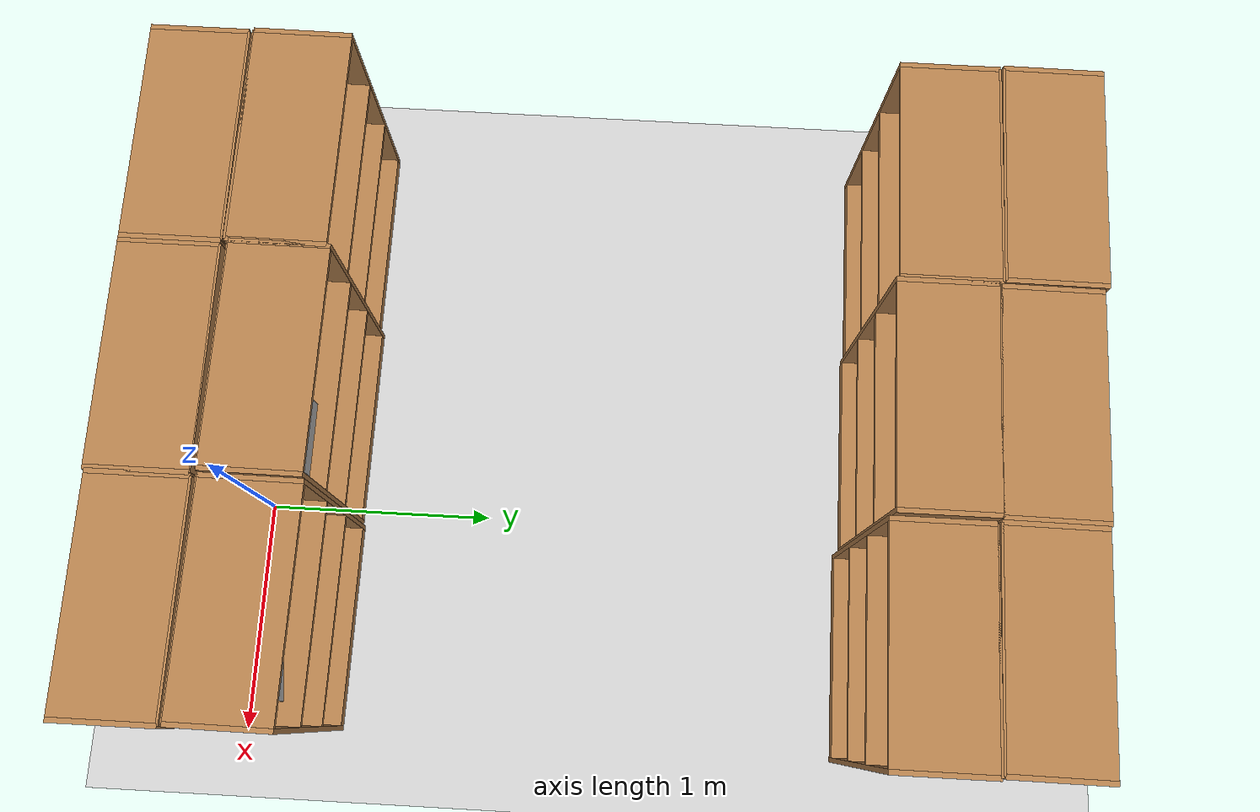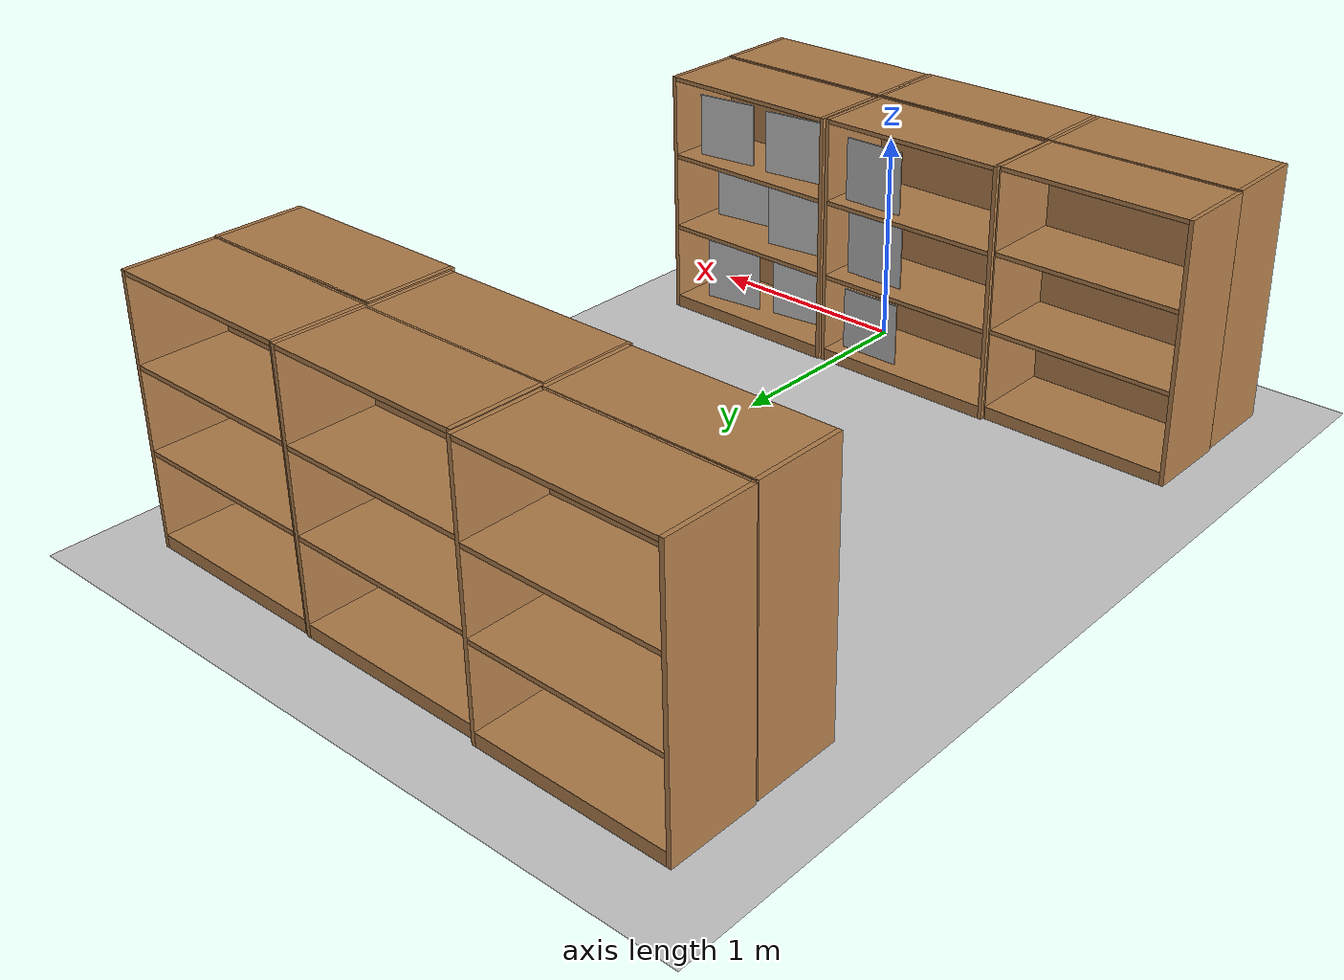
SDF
<sdf version="1.6">
 <world name="default">
  <model name="ground_plane">
   <static>1</static>
   <link name="link">
    <collision name="collision">
     <geometry><plane><normal>0 0 1</normal><size>100 100</size></plane></geometry>
     <surface><friction><ode><mu>100</mu><mu2>50</mu2></ode></friction></surface>
    </collision>
    <visual name="visual">
     <cast_shadows>0</cast_shadows>
     <geometry><plane><normal>0 0 1</normal><size>100 100</size></plane></geometry>
     <material>
      <script><uri>file://media/materials/scripts/gazebo.material</uri><name>Gazebo/Grey</name></script>
     </material>
    </visual>
   </link>
  </model>
  <model name="Shelves">
   <model name="bookshelf">
    <static>1</static>
    <link name="link">
     <inertial><mass>1</mass></inertial>
     <collision name="back">
      <pose>0 0.005 0.6 0 -0 0</pose>
      <geometry><box><size>0.9 0.01 1.2</size></box></geometry>
     </collision>
     <visual name="visual1">
      <pose>0 0.005 0.6 0 -0 0</pose>
      <geometry><box><size>0.9 0.01 1.2</size></box></geometry>
      <material>
       <script><uri>file://media/materials/scripts/gazebo.material</uri><name>Gazebo/Wood</name></script>
      </material>
     </visual>
     <collision name="left_side">
      <pose>0.45 -0.195 0.6 0 -0 0</pose>
      <geometry><box><size>0.02 0.4 1.2</size></box></geometry>
     </collision>
     <visual name="visual2">
      <pose>0.45 -0.195 0.6 0 -0 0</pose>
      <geometry><box><size>0.02 0.4 1.2</size></box></geometry>
      <material>
       <script><uri>file://media/materials/scripts/gazebo.material</uri><name>Gazebo/Wood</name></script>
      </material>
     </visual>
     <collision name="right_side">
      <pose>-0.45 -0.195 0.6 0 -0 0</pose>
      <geometry><box><size>0.02 0.4 1.2</size></box></geometry>
     </collision>
     <visual name="visual3">
      <pose>-0.45 -0.195 0.6 0 -0 0</pose>
      <geometry><box><size>0.02 0.4 1.2</size></box></geometry>
      <material>
       <script><uri>file://media/materials/scripts/gazebo.material</uri><name>Gazebo/Wood</name></script>
      </material>
     </visual>
     <collision name="bottom">
      <pose>0 -0.195 0.03 0 -0 0</pose>
      <geometry><box><size>0.88 0.4 0.06</size></box></geometry>
     </collision>
     <visual name="visual4">
      <pose>0 -0.195 0.03 0 -0 0</pose>
      <geometry><box><size>0.88 0.4 0.06</size></box></geometry>
      <material>
       <script><uri>file://media/materials/scripts/gazebo.material</uri><name>Gazebo/Wood</name></script>
      </material>
     </visual>
     <collision name="top">
      <pose>0 -0.195 1.19 0 -0 0</pose>
      <geometry><box><size>0.88 0.4 0.02</size></box></geometry>
     </collision>
     <visual name="visual5">
      <pose>0 -0.195 1.19 0 -0 0</pose>
      <geometry><box><size>0.88 0.4 0.02</size></box></geometry>
      <material>
       <script><uri>file://media/materials/scripts/gazebo.material</uri><name>Gazebo/Wood</name></script>
      </material>
     </visual>
     <collision name="low_shelf">
      <pose>0 -0.195 0.43 0 -0 0</pose>
      <geometry><box><size>0.88 0.4 0.02</size></box></geometry>
     </collision>
     <visual name="visual6">
      <pose>0 -0.195 0.43 0 -0 0</pose>
      <geometry><box><size>0.88 0.4 0.02</size></box></geometry>
      <material>
       <script><uri>file://media/materials/scripts/gazebo.material</uri><name>Gazebo/Wood</name></script>
      </material>
     </visual>
     <collision name="high_shelf">
      <pose>0 -0.195 0.8 0 -0 0</pose>
      <geometry><box><size>0.88 0.4 0.02</size></box></geometry>
     </collision>
     <visual name="visual7">
      <pose>0 -0.195 0.8 0 -0 0</pose>
      <geometry><box><size>0.88 0.4 0.02</size></box></geometry>
      <material>
       <script><uri>file://media/materials/scripts/gazebo.material</uri><name>Gazebo/Wood</name></script>
      </material>
     </visual>
    </link>
    <pose>0.917078 -1.51149 0 0 -0 0</pose>
   </model>
   <model name="bookshelf_0">
    <static>1</static>
    <link name="link">
     <inertial><mass>1</mass></inertial>
     <collision name="back">
      <pose>0 0.005 0.6 0 -0 0</pose>
      <geometry><box><size>0.9 0.01 1.2</size></box></geometry>
     </collision>
     <visual name="visual1">
      <pose>0 0.005 0.6 0 -0 0</pose>
      <geometry><box><size>0.9 0.01 1.2</size></box></geometry>
      <material>
       <script><uri>file://media/materials/scripts/gazebo.material</uri><name>Gazebo/Wood</name></script>
      </material>
     </visual>
     <collision name="left_side">
      <pose>0.45 -0.195 0.6 0 -0 0</pose>
      <geometry><box><size>0.02 0.4 1.2</size></box></geometry>
     </collision>
     <visual name="visual2">
      <pose>0.45 -0.195 0.6 0 -0 0</pose>
      <geometry><box><size>0.02 0.4 1.2</size></box></geometry>
      <material>
       <script><uri>file://media/materials/scripts/gazebo.material</uri><name>Gazebo/Wood</name></script>
      </material>
     </visual>
     <collision name="right_side">
      <pose>-0.45 -0.195 0.6 0 -0 0</pose>
      <geometry><box><size>0.02 0.4 1.2</size></box></geometry>
     </collision>
     <visual name="visual3">
      <pose>-0.45 -0.195 0.6 0 -0 0</pose>
      <geometry><box><size>0.02 0.4 1.2</size></box></geometry>
      <material>
       <script><uri>file://media/materials/scripts/gazebo.material</uri><name>Gazebo/Wood</name></script>
      </material>
     </visual>
     <collision name="bottom">
      <pose>0 -0.195 0.03 0 -0 0</pose>
      <geometry><box><size>0.88 0.4 0.06</size></box></geometry>
     </collision>
     <visual name="visual4">
      <pose>0 -0.195 0.03 0 -0 0</pose>
      <geometry><box><size>0.88 0.4 0.06</size></box></geometry>
      <material>
       <script><uri>file://media/materials/scripts/gazebo.material</uri><name>Gazebo/Wood</name></script>
      </material>
     </visual>
     <collision name="top">
      <pose>0 -0.195 1.19 0 -0 0</pose>
      <geometry><box><size>0.88 0.4 0.02</size></box></geometry>
     </collision>
     <visual name="visual5">
      <pose>0 -0.195 1.19 0 -0 0</pose>
      <geometry><box><size>0.88 0.4 0.02</size></box></geometry>
      <material>
       <script><uri>file://media/materials/scripts/gazebo.material</uri><name>Gazebo/Wood</name></script>
      </material>
     </visual>
     <collision name="low_shelf">
      <pose>0 -0.195 0.43 0 -0 0</pose>
      <geometry><box><size>0.88 0.4 0.02</size></box></geometry>
     </collision>
     <visual name="visual6">
      <pose>0 -0.195 0.43 0 -0 0</pose>
      <geometry><box><size>0.88 0.4 0.02</size></box></geometry>
      <material>
       <script><uri>file://media/materials/scripts/gazebo.material</uri><name>Gazebo/Wood</name></script>
      </material>
     </visual>
     <collision name="high_shelf">
      <pose>0 -0.195 0.8 0 -0 0</pose>
      <geometry><box><size>0.88 0.4 0.02</size></box></geometry>
     </collision>
     <visual name="visual7">
      <pose>0 -0.195 0.8 0 -0 0</pose>
      <geometry><box><size>0.88 0.4 0.02</size></box></geometry>
      <material>
       <script><uri>file://media/materials/scripts/gazebo.material</uri><name>Gazebo/Wood</name></script>
      </material>
     </visual>
    </link>
    <pose>0.003355 -1.51974 0 0 -0 0</pose>
   </model>
   <model name="bookshelf_0_clone">
    <static>1</static>
    <link name="link">
     <inertial><mass>1</mass></inertial>
     <collision name="back">
      <pose>0 0.005 0.6 0 -0 0</pose>
      <geometry><box><size>0.9 0.01 1.2</size></box></geometry>
     </collision>
     <visual name="visual1">
      <pose>0 0.005 0.6 0 -0 0</pose>
      <geometry><box><size>0.9 0.01 1.2</size></box></geometry>
      <material>
       <script><uri>file://media/materials/scripts/gazebo.material</uri><name>Gazebo/Wood</name></script>
      </material>
     </visual>
     <collision name="left_side">
      <pose>0.45 -0.195 0.6 0 -0 0</pose>
      <geometry><box><size>0.02 0.4 1.2</size></box></geometry>
     </collision>
     <visual name="visual2">
      <pose>0.45 -0.195 0.6 0 -0 0</pose>
      <geometry><box><size>0.02 0.4 1.2</size></box></geometry>
      <material>
       <script><uri>file://media/materials/scripts/gazebo.material</uri><name>Gazebo/Wood</name></script>
      </material>
     </visual>
     <collision name="right_side">
      <pose>-0.45 -0.195 0.6 0 -0 0</pose>
      <geometry><box><size>0.02 0.4 1.2</size></box></geometry>
     </collision>
     <visual name="visual3">
      <pose>-0.45 -0.195 0.6 0 -0 0</pose>
      <geometry><box><size>0.02 0.4 1.2</size></box></geometry>
      <material>
       <script><uri>file://media/materials/scripts/gazebo.material</uri><name>Gazebo/Wood</name></script>
      </material>
     </visual>
     <collision name="bottom">
      <pose>0 -0.195 0.03 0 -0 0</pose>
      <geometry><box><size>0.88 0.4 0.06</size></box></geometry>
     </collision>
     <visual name="visual4">
      <pose>0 -0.195 0.03 0 -0 0</pose>
      <geometry><box><size>0.88 0.4 0.06</size></box></geometry>
      <material>
       <script><uri>file://media/materials/scripts/gazebo.material</uri><name>Gazebo/Wood</name></script>
      </material>
     </visual>
     <collision name="top">
      <pose>0 -0.195 1.19 0 -0 0</pose>
      <geometry><box><size>0.88 0.4 0.02</size></box></geometry>
     </collision>
     <visual name="visual5">
      <pose>0 -0.195 1.19 0 -0 0</pose>
      <geometry><box><size>0.88 0.4 0.02</size></box></geometry>
      <material>
       <script><uri>file://media/materials/scripts/gazebo.material</uri><name>Gazebo/Wood</name></script>
      </material>
     </visual>
     <collision name="low_shelf">
      <pose>0 -0.195 0.43 0 -0 0</pose>
      <geometry><box><size>0.88 0.4 0.02</size></box></geometry>
     </collision>
     <visual name="visual6">
      <pose>0 -0.195 0.43 0 -0 0</pose>
      <geometry><box><size>0.88 0.4 0.02</size></box></geometry>
      <material>
       <script><uri>file://media/materials/scripts/gazebo.material</uri><name>Gazebo/Wood</name></script>
      </material>
     </visual>
     <collision name="high_shelf">
      <pose>0 -0.195 0.8 0 -0 0</pose>
      <geometry><box><size>0.88 0.4 0.02</size></box></geometry>
     </collision>
     <visual name="visual7">
      <pose>0 -0.195 0.8 0 -0 0</pose>
      <geometry><box><size>0.88 0.4 0.02</size></box></geometry>
      <material>
       <script><uri>file://media/materials/scripts/gazebo.material</uri><name>Gazebo/Wood</name></script>
      </material>
     </visual>
    </link>
    <pose>-0.913948 -1.51923 0 0 -0 0</pose>
   </model>
   <model name="bookshelf_clone">
    <static>1</static>
    <link name="link">
     <inertial><mass>1</mass></inertial>
     <collision name="back">
      <pose>0 0.005 0.6 0 -0 0</pose>
      <geometry><box><size>0.9 0.01 1.2</size></box></geometry>
     </collision>
     <visual name="visual1">
      <pose>0 0.005 0.6 0 -0 0</pose>
      <geometry><box><size>0.9 0.01 1.2</size></box></geometry>
      <material>
       <script><uri>file://media/materials/scripts/gazebo.material</uri><name>Gazebo/Wood</name></script>
      </material>
     </visual>
     <collision name="left_side">
      <pose>0.45 -0.195 0.6 0 -0 0</pose>
      <geometry><box><size>0.02 0.4 1.2</size></box></geometry>
     </collision>
     <visual name="visual2">
      <pose>0.45 -0.195 0.6 0 -0 0</pose>
      <geometry><box><size>0.02 0.4 1.2</size></box></geometry>
      <material>
       <script><uri>file://media/materials/scripts/gazebo.material</uri><name>Gazebo/Wood</name></script>
      </material>
     </visual>
     <collision name="right_side">
      <pose>-0.45 -0.195 0.6 0 -0 0</pose>
      <geometry><box><size>0.02 0.4 1.2</size></box></geometry>
     </collision>
     <visual name="visual3">
      <pose>-0.45 -0.195 0.6 0 -0 0</pose>
      <geometry><box><size>0.02 0.4 1.2</size></box></geometry>
      <material>
       <script><uri>file://media/materials/scripts/gazebo.material</uri><name>Gazebo/Wood</name></script>
      </material>
     </visual>
     <collision name="bottom">
      <pose>0 -0.195 0.03 0 -0 0</pose>
      <geometry><box><size>0.88 0.4 0.06</size></box></geometry>
     </collision>
     <visual name="visual4">
      <pose>0 -0.195 0.03 0 -0 0</pose>
      <geometry><box><size>0.88 0.4 0.06</size></box></geometry>
      <material>
       <script><uri>file://media/materials/scripts/gazebo.material</uri><name>Gazebo/Wood</name></script>
      </material>
     </visual>
     <collision name="top">
      <pose>0 -0.195 1.19 0 -0 0</pose>
      <geometry><box><size>0.88 0.4 0.02</size></box></geometry>
     </collision>
     <visual name="visual5">
      <pose>0 -0.195 1.19 0 -0 0</pose>
      <geometry><box><size>0.88 0.4 0.02</size></box></geometry>
      <material>
       <script><uri>file://media/materials/scripts/gazebo.material</uri><name>Gazebo/Wood</name></script>
      </material>
     </visual>
     <collision name="low_shelf">
      <pose>0 -0.195 0.43 0 -0 0</pose>
      <geometry><box><size>0.88 0.4 0.02</size></box></geometry>
     </collision>
     <visual name="visual6">
      <pose>0 -0.195 0.43 0 -0 0</pose>
      <geometry><box><size>0.88 0.4 0.02</size></box></geometry>
      <material>
       <script><uri>file://media/materials/scripts/gazebo.material</uri><name>Gazebo/Wood</name></script>
      </material>
     </visual>
     <collision name="high_shelf">
      <pose>0 -0.195 0.8 0 -0 0</pose>
      <geometry><box><size>0.88 0.4 0.02</size></box></geometry>
     </collision>
     <visual name="visual7">
      <pose>0 -0.195 0.8 0 -0 0</pose>
      <geometry><box><size>0.88 0.4 0.02</size></box></geometry>
      <material>
       <script><uri>file://media/materials/scripts/gazebo.material</uri><name>Gazebo/Wood</name></script>
      </material>
     </visual>
    </link>
    <pose>0.909911 -1.48273 0 0 -0 3.13429</pose>
   </model>
   <model name="bookshelf_clone_0">
    <static>1</static>
    <link name="link">
     <inertial><mass>1</mass></inertial>
     <collision name="back">
      <pose>0 0.005 0.6 0 -0 0</pose>
      <geometry><box><size>0.9 0.01 1.2</size></box></geometry>
     </collision>
     <visual name="visual1">
      <pose>0 0.005 0.6 0 -0 0</pose>
      <geometry><box><size>0.9 0.01 1.2</size></box></geometry>
      <material>
       <script><uri>file://media/materials/scripts/gazebo.material</uri><name>Gazebo/Wood</name></script>
      </material>
     </visual>
     <collision name="left_side">
      <pose>0.45 -0.195 0.6 0 -0 0</pose>
      <geometry><box><size>0.02 0.4 1.2</size></box></geometry>
     </collision>
     <visual name="visual2">
      <pose>0.45 -0.195 0.6 0 -0 0</pose>
      <geometry><box><size>0.02 0.4 1.2</size></box></geometry>
      <material>
       <script><uri>file://media/materials/scripts/gazebo.material</uri><name>Gazebo/Wood</name></script>
      </material>
     </visual>
     <collision name="right_side">
      <pose>-0.45 -0.195 0.6 0 -0 0</pose>
      <geometry><box><size>0.02 0.4 1.2</size></box></geometry>
     </collision>
     <visual name="visual3">
      <pose>-0.45 -0.195 0.6 0 -0 0</pose>
      <geometry><box><size>0.02 0.4 1.2</size></box></geometry>
      <material>
       <script><uri>file://media/materials/scripts/gazebo.material</uri><name>Gazebo/Wood</name></script>
      </material>
     </visual>
     <collision name="bottom">
      <pose>0 -0.195 0.03 0 -0 0</pose>
      <geometry><box><size>0.88 0.4 0.06</size></box></geometry>
     </collision>
     <visual name="visual4">
      <pose>0 -0.195 0.03 0 -0 0</pose>
      <geometry><box><size>0.88 0.4 0.06</size></box></geometry>
      <material>
       <script><uri>file://media/materials/scripts/gazebo.material</uri><name>Gazebo/Wood</name></script>
      </material>
     </visual>
     <collision name="top">
      <pose>0 -0.195 1.19 0 -0 0</pose>
      <geometry><box><size>0.88 0.4 0.02</size></box></geometry>
     </collision>
     <visual name="visual5">
      <pose>0 -0.195 1.19 0 -0 0</pose>
      <geometry><box><size>0.88 0.4 0.02</size></box></geometry>
      <material>
       <script><uri>file://media/materials/scripts/gazebo.material</uri><name>Gazebo/Wood</name></script>
      </material>
     </visual>
     <collision name="low_shelf">
      <pose>0 -0.195 0.43 0 -0 0</pose>
      <geometry><box><size>0.88 0.4 0.02</size></box></geometry>
     </collision>
     <visual name="visual6">
      <pose>0 -0.195 0.43 0 -0 0</pose>
      <geometry><box><size>0.88 0.4 0.02</size></box></geometry>
      <material>
       <script><uri>file://media/materials/scripts/gazebo.material</uri><name>Gazebo/Wood</name></script>
      </material>
     </visual>
     <collision name="high_shelf">
      <pose>0 -0.195 0.8 0 -0 0</pose>
      <geometry><box><size>0.88 0.4 0.02</size></box></geometry>
     </collision>
     <visual name="visual7">
      <pose>0 -0.195 0.8 0 -0 0</pose>
      <geometry><box><size>0.88 0.4 0.02</size></box></geometry>
      <material>
       <script><uri>file://media/materials/scripts/gazebo.material</uri><name>Gazebo/Wood</name></script>
      </material>
     </visual>
    </link>
    <pose>0.929067 1.47117 0 0 -0 0</pose>
   </model>
   <model name="bookshelf_clone_1">
    <static>1</static>
    <link name="link">
     <inertial><mass>1</mass></inertial>
     <collision name="back">
      <pose>0 0.005 0.6 0 -0 0</pose>
      <geometry><box><size>0.9 0.01 1.2</size></box></geometry>
     </collision>
     <visual name="visual1">
      <pose>0 0.005 0.6 0 -0 0</pose>
      <geometry><box><size>0.9 0.01 1.2</size></box></geometry>
      <material>
       <script><uri>file://media/materials/scripts/gazebo.material</uri><name>Gazebo/Wood</name></script>
      </material>
     </visual>
     <collision name="left_side">
      <pose>0.45 -0.195 0.6 0 -0 0</pose>
      <geometry><box><size>0.02 0.4 1.2</size></box></geometry>
     </collision>
     <visual name="visual2">
      <pose>0.45 -0.195 0.6 0 -0 0</pose>
      <geometry><box><size>0.02 0.4 1.2</size></box></geometry>
      <material>
       <script><uri>file://media/materials/scripts/gazebo.material</uri><name>Gazebo/Wood</name></script>
      </material>
     </visual>
     <collision name="right_side">
      <pose>-0.45 -0.195 0.6 0 -0 0</pose>
      <geometry><box><size>0.02 0.4 1.2</size></box></geometry>
     </collision>
     <visual name="visual3">
      <pose>-0.45 -0.195 0.6 0 -0 0</pose>
      <geometry><box><size>0.02 0.4 1.2</size></box></geometry>
      <material>
       <script><uri>file://media/materials/scripts/gazebo.material</uri><name>Gazebo/Wood</name></script>
      </material>
     </visual>
     <collision name="bottom">
      <pose>0 -0.195 0.03 0 -0 0</pose>
      <geometry><box><size>0.88 0.4 0.06</size></box></geometry>
     </collision>
     <visual name="visual4">
      <pose>0 -0.195 0.03 0 -0 0</pose>
      <geometry><box><size>0.88 0.4 0.06</size></box></geometry>
      <material>
       <script><uri>file://media/materials/scripts/gazebo.material</uri><name>Gazebo/Wood</name></script>
      </material>
     </visual>
     <collision name="top">
      <pose>0 -0.195 1.19 0 -0 0</pose>
      <geometry><box><size>0.88 0.4 0.02</size></box></geometry>
     </collision>
     <visual name="visual5">
      <pose>0 -0.195 1.19 0 -0 0</pose>
      <geometry><box><size>0.88 0.4 0.02</size></box></geometry>
      <material>
       <script><uri>file://media/materials/scripts/gazebo.material</uri><name>Gazebo/Wood</name></script>
      </material>
     </visual>
     <collision name="low_shelf">
      <pose>0 -0.195 0.43 0 -0 0</pose>
      <geometry><box><size>0.88 0.4 0.02</size></box></geometry>
     </collision>
     <visual name="visual6">
      <pose>0 -0.195 0.43 0 -0 0</pose>
      <geometry><box><size>0.88 0.4 0.02</size></box></geometry>
      <material>
       <script><uri>file://media/materials/scripts/gazebo.material</uri><name>Gazebo/Wood</name></script>
      </material>
     </visual>
     <collision name="high_shelf">
      <pose>0 -0.195 0.8 0 -0 0</pose>
      <geometry><box><size>0.88 0.4 0.02</size></box></geometry>
     </collision>
     <visual name="visual7">
      <pose>0 -0.195 0.8 0 -0 0</pose>
      <geometry><box><size>0.88 0.4 0.02</size></box></geometry>
      <material>
       <script><uri>file://media/materials/scripts/gazebo.material</uri><name>Gazebo/Wood</name></script>
      </material>
     </visual>
    </link>
    <pose>-0.002074 1.49816 0 0 -0 0</pose>
   </model>
   <model name="bookshelf_clone_2">
    <static>1</static>
    <link name="link">
     <inertial><mass>1</mass></inertial>
     <collision name="back">
      <pose>0 0.005 0.6 0 -0 0</pose>
      <geometry><box><size>0.9 0.01 1.2</size></box></geometry>
     </collision>
     <visual name="visual1">
      <pose>0 0.005 0.6 0 -0 0</pose>
      <geometry><box><size>0.9 0.01 1.2</size></box></geometry>
      <material>
       <script><uri>file://media/materials/scripts/gazebo.material</uri><name>Gazebo/Wood</name></script>
      </material>
     </visual>
     <collision name="left_side">
      <pose>0.45 -0.195 0.6 0 -0 0</pose>
      <geometry><box><size>0.02 0.4 1.2</size></box></geometry>
     </collision>
     <visual name="visual2">
      <pose>0.45 -0.195 0.6 0 -0 0</pose>
      <geometry><box><size>0.02 0.4 1.2</size></box></geometry>
      <material>
       <script><uri>file://media/materials/scripts/gazebo.material</uri><name>Gazebo/Wood</name></script>
      </material>
     </visual>
     <collision name="right_side">
      <pose>-0.45 -0.195 0.6 0 -0 0</pose>
      <geometry><box><size>0.02 0.4 1.2</size></box></geometry>
     </collision>
     <visual name="visual3">
      <pose>-0.45 -0.195 0.6 0 -0 0</pose>
      <geometry><box><size>0.02 0.4 1.2</size></box></geometry>
      <material>
       <script><uri>file://media/materials/scripts/gazebo.material</uri><name>Gazebo/Wood</name></script>
      </material>
     </visual>
     <collision name="bottom">
      <pose>0 -0.195 0.03 0 -0 0</pose>
      <geometry><box><size>0.88 0.4 0.06</size></box></geometry>
     </collision>
     <visual name="visual4">
      <pose>0 -0.195 0.03 0 -0 0</pose>
      <geometry><box><size>0.88 0.4 0.06</size></box></geometry>
      <material>
       <script><uri>file://media/materials/scripts/gazebo.material</uri><name>Gazebo/Wood</name></script>
      </material>
     </visual>
     <collision name="top">
      <pose>0 -0.195 1.19 0 -0 0</pose>
      <geometry><box><size>0.88 0.4 0.02</size></box></geometry>
     </collision>
     <visual name="visual5">
      <pose>0 -0.195 1.19 0 -0 0</pose>
      <geometry><box><size>0.88 0.4 0.02</size></box></geometry>
      <material>
       <script><uri>file://media/materials/scripts/gazebo.material</uri><name>Gazebo/Wood</name></script>
      </material>
     </visual>
     <collision name="low_shelf">
      <pose>0 -0.195 0.43 0 -0 0</pose>
      <geometry><box><size>0.88 0.4 0.02</size></box></geometry>
     </collision>
     <visual name="visual6">
      <pose>0 -0.195 0.43 0 -0 0</pose>
      <geometry><box><size>0.88 0.4 0.02</size></box></geometry>
      <material>
       <script><uri>file://media/materials/scripts/gazebo.material</uri><name>Gazebo/Wood</name></script>
      </material>
     </visual>
     <collision name="high_shelf">
      <pose>0 -0.195 0.8 0 -0 0</pose>
      <geometry><box><size>0.88 0.4 0.02</size></box></geometry>
     </collision>
     <visual name="visual7">
      <pose>0 -0.195 0.8 0 -0 0</pose>
      <geometry><box><size>0.88 0.4 0.02</size></box></geometry>
      <material>
       <script><uri>file://media/materials/scripts/gazebo.material</uri><name>Gazebo/Wood</name></script>
      </material>
     </visual>
    </link>
    <pose>-0.912984 1.51165 0 0 -0 0</pose>
   </model>
   <model name="bookshelf_clone_clone">
    <static>1</static>
    <link name="link">
     <inertial><mass>1</mass></inertial>
     <collision name="back">
      <pose>0 0.005 0.6 0 -0 0</pose>
      <geometry><box><size>0.9 0.01 1.2</size></box></geometry>
     </collision>
     <visual name="visual1">
      <pose>0 0.005 0.6 0 -0 0</pose>
      <geometry><box><size>0.9 0.01 1.2</size></box></geometry>
      <material>
       <script><uri>file://media/materials/scripts/gazebo.material</uri><name>Gazebo/Wood</name></script>
      </material>
     </visual>
     <collision name="left_side">
      <pose>0.45 -0.195 0.6 0 -0 0</pose>
      <geometry><box><size>0.02 0.4 1.2</size></box></geometry>
     </collision>
     <visual name="visual2">
      <pose>0.45 -0.195 0.6 0 -0 0</pose>
      <geometry><box><size>0.02 0.4 1.2</size></box></geometry>
      <material>
       <script><uri>file://media/materials/scripts/gazebo.material</uri><name>Gazebo/Wood</name></script>
      </material>
     </visual>
     <collision name="right_side">
      <pose>-0.45 -0.195 0.6 0 -0 0</pose>
      <geometry><box><size>0.02 0.4 1.2</size></box></geometry>
     </collision>
     <visual name="visual3">
      <pose>-0.45 -0.195 0.6 0 -0 0</pose>
      <geometry><box><size>0.02 0.4 1.2</size></box></geometry>
      <material>
       <script><uri>file://media/materials/scripts/gazebo.material</uri><name>Gazebo/Wood</name></script>
      </material>
     </visual>
     <collision name="bottom">
      <pose>0 -0.195 0.03 0 -0 0</pose>
      <geometry><box><size>0.88 0.4 0.06</size></box></geometry>
     </collision>
     <visual name="visual4">
      <pose>0 -0.195 0.03 0 -0 0</pose>
      <geometry><box><size>0.88 0.4 0.06</size></box></geometry>
      <material>
       <script><uri>file://media/materials/scripts/gazebo.material</uri><name>Gazebo/Wood</name></script>
      </material>
     </visual>
     <collision name="top">
      <pose>0 -0.195 1.19 0 -0 0</pose>
      <geometry><box><size>0.88 0.4 0.02</size></box></geometry>
     </collision>
     <visual name="visual5">
      <pose>0 -0.195 1.19 0 -0 0</pose>
      <geometry><box><size>0.88 0.4 0.02</size></box></geometry>
      <material>
       <script><uri>file://media/materials/scripts/gazebo.material</uri><name>Gazebo/Wood</name></script>
      </material>
     </visual>
     <collision name="low_shelf">
      <pose>0 -0.195 0.43 0 -0 0</pose>
      <geometry><box><size>0.88 0.4 0.02</size></box></geometry>
     </collision>
     <visual name="visual6">
      <pose>0 -0.195 0.43 0 -0 0</pose>
      <geometry><box><size>0.88 0.4 0.02</size></box></geometry>
      <material>
       <script><uri>file://media/materials/scripts/gazebo.material</uri><name>Gazebo/Wood</name></script>
      </material>
     </visual>
     <collision name="high_shelf">
      <pose>0 -0.195 0.8 0 -0 0</pose>
      <geometry><box><size>0.88 0.4 0.02</size></box></geometry>
     </collision>
     <visual name="visual7">
      <pose>0 -0.195 0.8 0 -0 0</pose>
      <geometry><box><size>0.88 0.4 0.02</size></box></geometry>
      <material>
       <script><uri>file://media/materials/scripts/gazebo.material</uri><name>Gazebo/Wood</name></script>
      </material>
     </visual>
    </link>
    <pose>-0.015434 -1.48433 0 0 -0 3.13429</pose>
   </model>
   <model name="bookshelf_clone_clone_0">
    <static>1</static>
    <link name="link">
     <inertial><mass>1</mass></inertial>
     <collision name="back">
      <pose>0 0.005 0.6 0 -0 0</pose>
      <geometry><box><size>0.9 0.01 1.2</size></box></geometry>
     </collision>
     <visual name="visual1">
      <pose>0 0.005 0.6 0 -0 0</pose>
      <geometry><box><size>0.9 0.01 1.2</size></box></geometry>
      <material>
       <script><uri>file://media/materials/scripts/gazebo.material</uri><name>Gazebo/Wood</name></script>
      </material>
     </visual>
     <collision name="left_side">
      <pose>0.45 -0.195 0.6 0 -0 0</pose>
      <geometry><box><size>0.02 0.4 1.2</size></box></geometry>
     </collision>
     <visual name="visual2">
      <pose>0.45 -0.195 0.6 0 -0 0</pose>
      <geometry><box><size>0.02 0.4 1.2</size></box></geometry>
      <material>
       <script><uri>file://media/materials/scripts/gazebo.material</uri><name>Gazebo/Wood</name></script>
      </material>
     </visual>
     <collision name="right_side">
      <pose>-0.45 -0.195 0.6 0 -0 0</pose>
      <geometry><box><size>0.02 0.4 1.2</size></box></geometry>
     </collision>
     <visual name="visual3">
      <pose>-0.45 -0.195 0.6 0 -0 0</pose>
      <geometry><box><size>0.02 0.4 1.2</size></box></geometry>
      <material>
       <script><uri>file://media/materials/scripts/gazebo.material</uri><name>Gazebo/Wood</name></script>
      </material>
     </visual>
     <collision name="bottom">
      <pose>0 -0.195 0.03 0 -0 0</pose>
      <geometry><box><size>0.88 0.4 0.06</size></box></geometry>
     </collision>
     <visual name="visual4">
      <pose>0 -0.195 0.03 0 -0 0</pose>
      <geometry><box><size>0.88 0.4 0.06</size></box></geometry>
      <material>
       <script><uri>file://media/materials/scripts/gazebo.material</uri><name>Gazebo/Wood</name></script>
      </material>
     </visual>
     <collision name="top">
      <pose>0 -0.195 1.19 0 -0 0</pose>
      <geometry><box><size>0.88 0.4 0.02</size></box></geometry>
     </collision>
     <visual name="visual5">
      <pose>0 -0.195 1.19 0 -0 0</pose>
      <geometry><box><size>0.88 0.4 0.02</size></box></geometry>
      <material>
       <script><uri>file://media/materials/scripts/gazebo.material</uri><name>Gazebo/Wood</name></script>
      </material>
     </visual>
     <collision name="low_shelf">
      <pose>0 -0.195 0.43 0 -0 0</pose>
      <geometry><box><size>0.88 0.4 0.02</size></box></geometry>
     </collision>
     <visual name="visual6">
      <pose>0 -0.195 0.43 0 -0 0</pose>
      <geometry><box><size>0.88 0.4 0.02</size></box></geometry>
      <material>
       <script><uri>file://media/materials/scripts/gazebo.material</uri><name>Gazebo/Wood</name></script>
      </material>
     </visual>
     <collision name="high_shelf">
      <pose>0 -0.195 0.8 0 -0 0</pose>
      <geometry><box><size>0.88 0.4 0.02</size></box></geometry>
     </collision>
     <visual name="visual7">
      <pose>0 -0.195 0.8 0 -0 0</pose>
      <geometry><box><size>0.88 0.4 0.02</size></box></geometry>
      <material>
       <script><uri>file://media/materials/scripts/gazebo.material</uri><name>Gazebo/Wood</name></script>
      </material>
     </visual>
    </link>
    <pose>-0.921878 -1.49499 0 0 -0 3.13429</pose>
   </model>
   <model name="bookshelf_clone_clone_1">
    <static>1</static>
    <link name="link">
     <inertial><mass>1</mass></inertial>
     <collision name="back">
      <pose>0 0.005 0.6 0 -0 0</pose>
      <geometry><box><size>0.9 0.01 1.2</size></box></geometry>
     </collision>
     <visual name="visual1">
      <pose>0 0.005 0.6 0 -0 0</pose>
      <geometry><box><size>0.9 0.01 1.2</size></box></geometry>
      <material>
       <script><uri>file://media/materials/scripts/gazebo.material</uri><name>Gazebo/Wood</name></script>
      </material>
     </visual>
     <collision name="left_side">
      <pose>0.45 -0.195 0.6 0 -0 0</pose>
      <geometry><box><size>0.02 0.4 1.2</size></box></geometry>
     </collision>
     <visual name="visual2">
      <pose>0.45 -0.195 0.6 0 -0 0</pose>
      <geometry><box><size>0.02 0.4 1.2</size></box></geometry>
      <material>
       <script><uri>file://media/materials/scripts/gazebo.material</uri><name>Gazebo/Wood</name></script>
      </material>
     </visual>
     <collision name="right_side">
      <pose>-0.45 -0.195 0.6 0 -0 0</pose>
      <geometry><box><size>0.02 0.4 1.2</size></box></geometry>
     </collision>
     <visual name="visual3">
      <pose>-0.45 -0.195 0.6 0 -0 0</pose>
      <geometry><box><size>0.02 0.4 1.2</size></box></geometry>
      <material>
       <script><uri>file://media/materials/scripts/gazebo.material</uri><name>Gazebo/Wood</name></script>
      </material>
     </visual>
     <collision name="bottom">
      <pose>0 -0.195 0.03 0 -0 0</pose>
      <geometry><box><size>0.88 0.4 0.06</size></box></geometry>
     </collision>
     <visual name="visual4">
      <pose>0 -0.195 0.03 0 -0 0</pose>
      <geometry><box><size>0.88 0.4 0.06</size></box></geometry>
      <material>
       <script><uri>file://media/materials/scripts/gazebo.material</uri><name>Gazebo/Wood</name></script>
      </material>
     </visual>
     <collision name="top">
      <pose>0 -0.195 1.19 0 -0 0</pose>
      <geometry><box><size>0.88 0.4 0.02</size></box></geometry>
     </collision>
     <visual name="visual5">
      <pose>0 -0.195 1.19 0 -0 0</pose>
      <geometry><box><size>0.88 0.4 0.02</size></box></geometry>
      <material>
       <script><uri>file://media/materials/scripts/gazebo.material</uri><name>Gazebo/Wood</name></script>
      </material>
     </visual>
     <collision name="low_shelf">
      <pose>0 -0.195 0.43 0 -0 0</pose>
      <geometry><box><size>0.88 0.4 0.02</size></box></geometry>
     </collision>
     <visual name="visual6">
      <pose>0 -0.195 0.43 0 -0 0</pose>
      <geometry><box><size>0.88 0.4 0.02</size></box></geometry>
      <material>
       <script><uri>file://media/materials/scripts/gazebo.material</uri><name>Gazebo/Wood</name></script>
      </material>
     </visual>
     <collision name="high_shelf">
      <pose>0 -0.195 0.8 0 -0 0</pose>
      <geometry><box><size>0.88 0.4 0.02</size></box></geometry>
     </collision>
     <visual name="visual7">
      <pose>0 -0.195 0.8 0 -0 0</pose>
      <geometry><box><size>0.88 0.4 0.02</size></box></geometry>
      <material>
       <script><uri>file://media/materials/scripts/gazebo.material</uri><name>Gazebo/Wood</name></script>
      </material>
     </visual>
    </link>
    <pose>0.922203 1.4925 0 0 -0 3.13429</pose>
   </model>
   <model name="bookshelf_clone_clone_2">
    <static>1</static>
    <link name="link">
     <inertial><mass>1</mass></inertial>
     <collision name="back">
      <pose>0 0.005 0.6 0 -0 0</pose>
      <geometry><box><size>0.9 0.01 1.2</size></box></geometry>
     </collision>
     <visual name="visual1">
      <pose>0 0.005 0.6 0 -0 0</pose>
      <geometry><box><size>0.9 0.01 1.2</size></box></geometry>
      <material>
       <script><uri>file://media/materials/scripts/gazebo.material</uri><name>Gazebo/Wood</name></script>
      </material>
     </visual>
     <collision name="left_side">
      <pose>0.45 -0.195 0.6 0 -0 0</pose>
      <geometry><box><size>0.02 0.4 1.2</size></box></geometry>
     </collision>
     <visual name="visual2">
      <pose>0.45 -0.195 0.6 0 -0 0</pose>
      <geometry><box><size>0.02 0.4 1.2</size></box></geometry>
      <material>
       <script><uri>file://media/materials/scripts/gazebo.material</uri><name>Gazebo/Wood</name></script>
      </material>
     </visual>
     <collision name="right_side">
      <pose>-0.45 -0.195 0.6 0 -0 0</pose>
      <geometry><box><size>0.02 0.4 1.2</size></box></geometry>
     </collision>
     <visual name="visual3">
      <pose>-0.45 -0.195 0.6 0 -0 0</pose>
      <geometry><box><size>0.02 0.4 1.2</size></box></geometry>
      <material>
       <script><uri>file://media/materials/scripts/gazebo.material</uri><name>Gazebo/Wood</name></script>
      </material>
     </visual>
     <collision name="bottom">
      <pose>0 -0.195 0.03 0 -0 0</pose>
      <geometry><box><size>0.88 0.4 0.06</size></box></geometry>
     </collision>
     <visual name="visual4">
      <pose>0 -0.195 0.03 0 -0 0</pose>
      <geometry><box><size>0.88 0.4 0.06</size></box></geometry>
      <material>
       <script><uri>file://media/materials/scripts/gazebo.material</uri><name>Gazebo/Wood</name></script>
      </material>
     </visual>
     <collision name="top">
      <pose>0 -0.195 1.19 0 -0 0</pose>
      <geometry><box><size>0.88 0.4 0.02</size></box></geometry>
     </collision>
     <visual name="visual5">
      <pose>0 -0.195 1.19 0 -0 0</pose>
      <geometry><box><size>0.88 0.4 0.02</size></box></geometry>
      <material>
       <script><uri>file://media/materials/scripts/gazebo.material</uri><name>Gazebo/Wood</name></script>
      </material>
     </visual>
     <collision name="low_shelf">
      <pose>0 -0.195 0.43 0 -0 0</pose>
      <geometry><box><size>0.88 0.4 0.02</size></box></geometry>
     </collision>
     <visual name="visual6">
      <pose>0 -0.195 0.43 0 -0 0</pose>
      <geometry><box><size>0.88 0.4 0.02</size></box></geometry>
      <material>
       <script><uri>file://media/materials/scripts/gazebo.material</uri><name>Gazebo/Wood</name></script>
      </material>
     </visual>
     <collision name="high_shelf">
      <pose>0 -0.195 0.8 0 -0 0</pose>
      <geometry><box><size>0.88 0.4 0.02</size></box></geometry>
     </collision>
     <visual name="visual7">
      <pose>0 -0.195 0.8 0 -0 0</pose>
      <geometry><box><size>0.88 0.4 0.02</size></box></geometry>
      <material>
       <script><uri>file://media/materials/scripts/gazebo.material</uri><name>Gazebo/Wood</name></script>
      </material>
     </visual>
    </link>
    <pose>0.004553 1.50602 0 0 -0 3.13429</pose>
   </model>
   <model name="bookshelf_clone_clone_3">
    <static>1</static>
    <link name="link">
     <inertial><mass>1</mass></inertial>
     <collision name="back">
      <pose>0 0.005 0.6 0 -0 0</pose>
      <geometry><box><size>0.9 0.01 1.2</size></box></geometry>
     </collision>
     <visual name="visual1">
      <pose>0 0.005 0.6 0 -0 0</pose>
      <geometry><box><size>0.9 0.01 1.2</size></box></geometry>
      <material>
       <script><uri>file://media/materials/scripts/gazebo.material</uri><name>Gazebo/Wood</name></script>
      </material>
     </visual>
     <collision name="left_side">
      <pose>0.45 -0.195 0.6 0 -0 0</pose>
      <geometry><box><size>0.02 0.4 1.2</size></box></geometry>
     </collision>
     <visual name="visual2">
      <pose>0.45 -0.195 0.6 0 -0 0</pose>
      <geometry><box><size>0.02 0.4 1.2</size></box></geometry>
      <material>
       <script><uri>file://media/materials/scripts/gazebo.material</uri><name>Gazebo/Wood</name></script>
      </material>
     </visual>
     <collision name="right_side">
      <pose>-0.45 -0.195 0.6 0 -0 0</pose>
      <geometry><box><size>0.02 0.4 1.2</size></box></geometry>
     </collision>
     <visual name="visual3">
      <pose>-0.45 -0.195 0.6 0 -0 0</pose>
      <geometry><box><size>0.02 0.4 1.2</size></box></geometry>
      <material>
       <script><uri>file://media/materials/scripts/gazebo.material</uri><name>Gazebo/Wood</name></script>
      </material>
     </visual>
     <collision name="bottom">
      <pose>0 -0.195 0.03 0 -0 0</pose>
      <geometry><box><size>0.88 0.4 0.06</size></box></geometry>
     </collision>
     <visual name="visual4">
      <pose>0 -0.195 0.03 0 -0 0</pose>
      <geometry><box><size>0.88 0.4 0.06</size></box></geometry>
      <material>
       <script><uri>file://media/materials/scripts/gazebo.material</uri><name>Gazebo/Wood</name></script>
      </material>
     </visual>
     <collision name="top">
      <pose>0 -0.195 1.19 0 -0 0</pose>
      <geometry><box><size>0.88 0.4 0.02</size></box></geometry>
     </collision>
     <visual name="visual5">
      <pose>0 -0.195 1.19 0 -0 0</pose>
      <geometry><box><size>0.88 0.4 0.02</size></box></geometry>
      <material>
       <script><uri>file://media/materials/scripts/gazebo.material</uri><name>Gazebo/Wood</name></script>
      </material>
     </visual>
     <collision name="low_shelf">
      <pose>0 -0.195 0.43 0 -0 0</pose>
      <geometry><box><size>0.88 0.4 0.02</size></box></geometry>
     </collision>
     <visual name="visual6">
      <pose>0 -0.195 0.43 0 -0 0</pose>
      <geometry><box><size>0.88 0.4 0.02</size></box></geometry>
      <material>
       <script><uri>file://media/materials/scripts/gazebo.material</uri><name>Gazebo/Wood</name></script>
      </material>
     </visual>
     <collision name="high_shelf">
      <pose>0 -0.195 0.8 0 -0 0</pose>
      <geometry><box><size>0.88 0.4 0.02</size></box></geometry>
     </collision>
     <visual name="visual7">
      <pose>0 -0.195 0.8 0 -0 0</pose>
      <geometry><box><size>0.88 0.4 0.02</size></box></geometry>
      <material>
       <script><uri>file://media/materials/scripts/gazebo.material</uri><name>Gazebo/Wood</name></script>
      </material>
     </visual>
    </link>
    <pose>-0.919847 1.533 0 0 -0 3.13429</pose>
   </model>
   <static>1</static>
   <pose>-0.384702 1.51462 0 0 -0 0</pose>
  </model>
  <model name="Banana_clone">
   <static>1</static>
   <link name="link">
    <visual name="visual">
     <geometry><mesh><uri>model://banana/meshes/Banana.dae</uri><scale>0.6 0.6 0.6</scale></mesh></geometry>
    </visual>
   </link>
   <pose>-0.182579 -0.293471 0.065225 0.000533 -7.9e-05 -1.42379</pose>
  </model>
  <model name="Banana_clone_1">
   <static>1</static>
   <link name="link">
    <visual name="visual">
     <geometry><mesh><uri>model://banana/meshes/Banana.dae</uri><scale>0.6 0.6 0.6</scale></mesh></geometry>
    </visual>
   </link>
   <pose>-0.17639 -0.228847 0.808363 0.000533 -7.9e-05 -1.42379</pose>
  </model>
  <model name="Banana_clone_2">
   <static>1</static>
   <link name="link">
    <visual name="visual">
     <geometry><mesh><uri>model://banana/meshes/Banana.dae</uri><scale>0.6 0.6 0.6</scale></mesh></geometry>
    </visual>
   </link>
   <pose>-0.183463 -0.228847 0.443564 0.000533 -7.9e-05 -1.42379</pose>
  </model>
  <model name="Beans">
   <static>1</static>
   <link name="link">
    <visual name="visual">
     <geometry><mesh><uri>model://beans/meshes/Beans.dae</uri><scale>0.6 0.6 0.6</scale></mesh></geometry>
    </visual>
   </link>
   <pose>0.29499 -0.263876 0.064744 0 0 -1.60876</pose>
  </model>
  <model name="Beans_clone">
   <static>1</static>
   <link name="link">
    <visual name="visual">
     <geometry><mesh><uri>model://beans/meshes/Beans.dae</uri><scale>0.6 0.6 0.6</scale></mesh></geometry>
    </visual>
   </link>
   <pose>0.69984 -0.282873 0.064744 0 0 -1.60876</pose>
  </model>
  <model name="Beans_clone_0">
   <static>1</static>
   <link name="link">
    <visual name="visual">
     <geometry><mesh><uri>model://beans/meshes/Beans.dae</uri><scale>0.6 0.6 0.6</scale></mesh></geometry>
    </visual>
   </link>
   <pose>0.697457 -0.282873 0.448462 0 0 -1.60876</pose>
  </model>
  <model name="Beans_clone_0_clone">
   <static>1</static>
   <link name="link">
    <visual name="visual">
     <geometry><mesh><uri>model://beans/meshes/Beans.dae</uri><scale>0.6 0.6 0.6</scale></mesh></geometry>
    </visual>
   </link>
   <pose>0.306617 -0.282873 0.448462 0 0 -1.60876</pose>
  </model>
  <model name="Beans_clone_0_clone_0">
   <static>1</static>
   <link name="link">
    <visual name="visual">
     <geometry><mesh><uri>model://beans/meshes/Beans.dae</uri><scale>0.6 0.6 0.6</scale></mesh></geometry>
    </visual>
   </link>
   <pose>0.311907 -0.335155 0.800347 0 0 -1.60876</pose>
  </model>
  <model name="Beans_clone_0_clone_0_clone">
   <static>1</static>
   <link name="link">
    <visual name="visual">
     <geometry><mesh><uri>model://beans/meshes/Beans.dae</uri><scale>0.6 0.6 0.6</scale></mesh></geometry>
    </visual>
   </link>
   <pose>0.705803 -0.25067 0.800347 0 0 -1.60876</pose>
  </model>
  <model name="Bread">
   <static>1</static>
   <link name="link">
    <visual name="visual">
     <geometry><mesh><uri>model://bread/meshes/Bread.dae</uri><scale>0.6 0.6 0.6</scale></mesh></geometry>
    </visual>
   </link>
   <pose>0.332226 0.293152 0.444239 0 0 -1.45098</pose>
  </model>
  <model name="Bread_clone">
   <static>1</static>
   <link name="link">
    <visual name="visual">
     <geometry><mesh><uri>model://bread/meshes/Bread.dae</uri><scale>0.6 0.6 0.6</scale></mesh></geometry>
    </visual>
   </link>
   <pose>0.700454 0.310908 0.061754 0 0 -1.45098</pose>
  </model>
  <model name="Bread_clone_0">
   <static>1</static>
   <link name="link">
    <visual name="visual">
     <geometry><mesh><uri>model://bread/meshes/Bread.dae</uri><scale>0.6 0.6 0.6</scale></mesh></geometry>
    </visual>
   </link>
   <pose>0.332008 0.256114 0.061754 0 0 -1.45098</pose>
  </model>
  <model name="Bread_clone_1">
   <static>1</static>
   <link name="link">
    <visual name="visual">
     <geometry><mesh><uri>model://bread/meshes/Bread.dae</uri><scale>0.6 0.6 0.6</scale></mesh></geometry>
    </visual>
   </link>
   <pose>0.72568 0.330624 0.815661 0 0 -1.45098</pose>
  </model>
  <model name="Bread_clone_2">
   <static>1</static>
   <link name="link">
    <visual name="visual">
     <geometry><mesh><uri>model://bread/meshes/Bread.dae</uri><scale>0.6 0.6 0.6</scale></mesh></geometry>
    </visual>
   </link>
   <pose>0.757904 0.169777 0.444239 0 0 -1.45098</pose>
  </model>
  <model name="Bread_clone_1_clone">
   <static>1</static>
   <link name="link">
    <visual name="visual">
     <geometry><mesh><uri>model://bread/meshes/Bread.dae</uri><scale>0.6 0.6 0.6</scale></mesh></geometry>
    </visual>
   </link>
   <pose>0.336666 0.311566 0.815661 0 0 -1.45098</pose>
  </model>
  <model name="Chicken">
   <static>1</static>
   <link name="link">
    <visual name="visual">
     <geometry><mesh><uri>model://chicken/meshes/Chicken.dae</uri><scale>0.6 0.6 0.6</scale></mesh></geometry>
    </visual>
   </link>
   <pose>-0.160118 0.339964 0.060375 0 0 -1.57126</pose>
  </model>
  <model name="Chicken_clone_0_clone">
   <static>1</static>
   <link name="link">
    <visual name="visual">
     <geometry><mesh><uri>model://chicken/meshes/Chicken.dae</uri><scale>0.6 0.6 0.6</scale></mesh></geometry>
    </visual>
   </link>
   <pose>-0.158544 0.347031 0.809371 0 0 -1.57126</pose>
  </model>
  <model name="Chicken_clone_0_clone_0">
   <static>1</static>
   <link name="link">
    <visual name="visual">
     <geometry><mesh><uri>model://chicken/meshes/Chicken.dae</uri><scale>0.6 0.6 0.6</scale></mesh></geometry>
    </visual>
   </link>
   <pose>-0.165798 0.329431 0.444777 0 0 -1.57126</pose>
  </model>
 </world>
</sdf>
